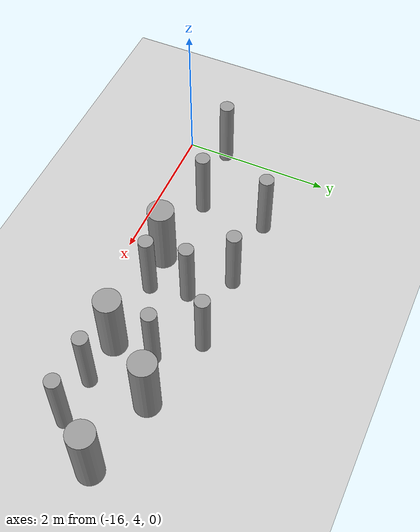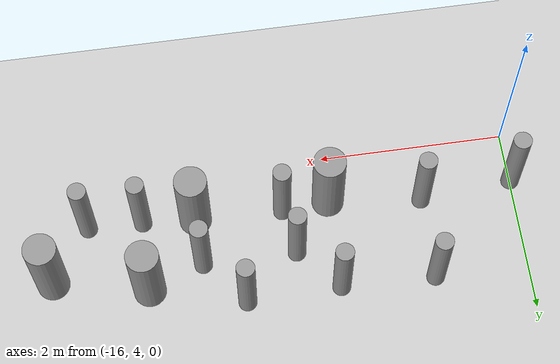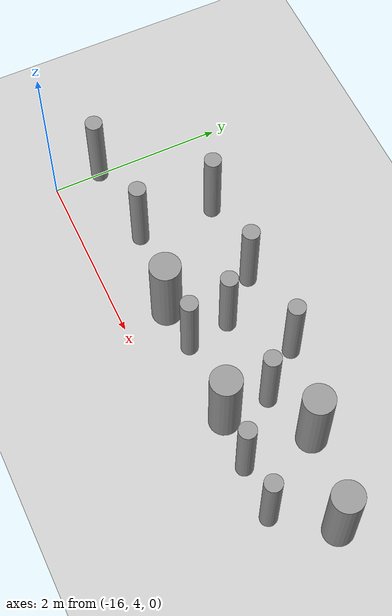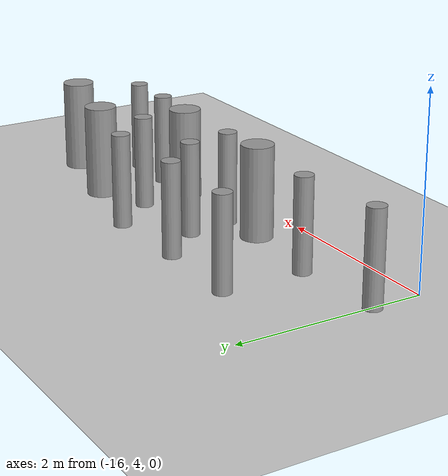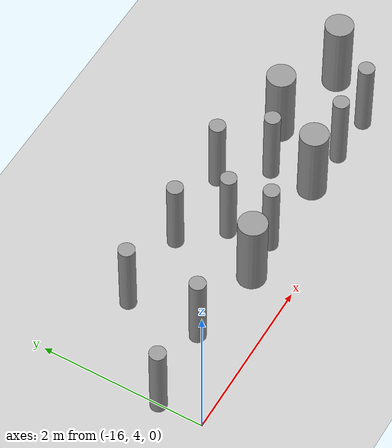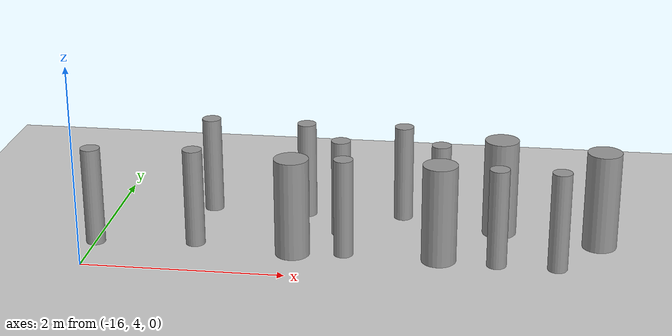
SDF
<sdf version="1.6">
 <world name="default">
  <model name="ground_plane">
   <static>1</static>
   <link name="link">
    <collision name="collision">
     <geometry><plane><normal>0 0 1</normal><size>100 100</size></plane></geometry>
     <surface><friction><ode><mu>100</mu><mu2>50</mu2></ode></friction></surface>
    </collision>
    <visual name="visual">
     <cast_shadows>0</cast_shadows>
     <geometry><plane><normal>0 0 1</normal><size>100 100</size></plane></geometry>
     <material>
      <script><uri>file://media/materials/scripts/gazebo.material</uri><name>Gazebo/Grey</name></script>
     </material>
    </visual>
   </link>
  </model>
  <model name="cyl_wall_clone_clone_3_clone_2_clone_1">
   <link name="link_0">
    <pose>-2.73893 -0.366465 0 0 -0 0</pose>
    <inertial>
     <mass>0.0374993</mass>
     <inertia>
      <ixx>0.00321281</ixx>
      <ixy>0</ixy>
      <ixz>0</ixz>
      <iyy>0.00321281</iyy>
      <iyz>0</iyz>
      <izz>0.000175774</izz>
     </inertia>
    </inertial>
    <visual name="visual">
     <geometry><cylinder><radius>0.0968661</radius><length>1</length></cylinder></geometry>
     <material>
      <lighting>1</lighting>
      <script><uri>file://media/materials/scripts/gazebo.material</uri><name>Gazebo/Grey</name></script>
      <ambient>0.3 0.3 0.3 1</ambient>
      <diffuse>0.7 0.7 0.7 1</diffuse>
      <specular>0.01 0.01 0.01 1</specular>
      <emissive>0 0 0 1</emissive>
     </material>
    </visual>
    <collision name="collision">
     <geometry><cylinder><radius>0.096866</radius><length>1</length></cylinder></geometry>
     <surface>
      <friction>
       <ode><mu>1</mu><mu2>1</mu2><fdir1>0 0 0</fdir1><slip1>0</slip1><slip2>0</slip2></ode>
       <torsional>
        <coefficient>1</coefficient>
        <patch_radius>0</patch_radius>
        <surface_radius>0</surface_radius>
        <use_patch_radius>1</use_patch_radius>
        <ode><slip>0</slip></ode>
       </torsional>
      </friction>
      <bounce><restitution_coefficient>0</restitution_coefficient><threshold>1e+06</threshold></bounce>
      <contact>
       <collide_without_contact>0</collide_without_contact>
       <collide_without_contact_bitmask>1</collide_without_contact_bitmask>
       <collide_bitmask>1</collide_bitmask>
       <ode>
        <soft_cfm>0</soft_cfm>
        <soft_erp>0.2</soft_erp>
        <kp>1e+13</kp>
        <kd>1</kd>
        <max_vel>0.01</max_vel>
        <min_depth>0</min_depth>
       </ode>
       <bullet>
        <split_impulse>1</split_impulse>
        <split_impulse_penetration_threshold>-0.01</split_impulse_penetration_threshold>
        <soft_cfm>0</soft_cfm>
        <soft_erp>0.2</soft_erp>
        <kp>1e+13</kp>
        <kd>1</kd>
       </bullet>
      </contact>
     </surface>
    </collision>
   </link>
   <link name="link_0_clone">
    <pose>-1.73893 0.61877 0 0 -0 0</pose>
    <inertial>
     <mass>0.0374993</mass>
     <inertia>
      <ixx>0.00321281</ixx>
      <ixy>0</ixy>
      <ixz>0</ixz>
      <iyy>0.00321281</iyy>
      <iyz>0</iyz>
      <izz>0.000175774</izz>
     </inertia>
    </inertial>
    <visual name="visual">
     <geometry><cylinder><radius>0.0968661</radius><length>1</length></cylinder></geometry>
     <material>
      <lighting>1</lighting>
      <script><uri>file://media/materials/scripts/gazebo.material</uri><name>Gazebo/Grey</name></script>
      <ambient>0.3 0.3 0.3 1</ambient>
      <diffuse>0.7 0.7 0.7 1</diffuse>
      <specular>0.01 0.01 0.01 1</specular>
      <emissive>0 0 0 1</emissive>
      <shader type="pixel"/>
     </material>
    </visual>
    <collision name="collision">
     <geometry><cylinder><radius>0.096866</radius><length>1</length></cylinder></geometry>
     <surface>
      <friction>
       <ode><mu>1</mu><mu2>1</mu2><fdir1>0 0 0</fdir1><slip1>0</slip1><slip2>0</slip2></ode>
       <torsional>
        <coefficient>1</coefficient>
        <patch_radius>0</patch_radius>
        <surface_radius>0</surface_radius>
        <use_patch_radius>1</use_patch_radius>
        <ode><slip>0</slip></ode>
       </torsional>
      </friction>
      <bounce><restitution_coefficient>0</restitution_coefficient><threshold>1e+06</threshold></bounce>
      <contact>
       <collide_without_contact>0</collide_without_contact>
       <collide_without_contact_bitmask>1</collide_without_contact_bitmask>
       <collide_bitmask>1</collide_bitmask>
       <ode>
        <soft_cfm>0</soft_cfm>
        <soft_erp>0.2</soft_erp>
        <kp>1e+13</kp>
        <kd>1</kd>
        <max_vel>0.01</max_vel>
        <min_depth>0</min_depth>
       </ode>
       <bullet>
        <split_impulse>1</split_impulse>
        <split_impulse_penetration_threshold>-0.01</split_impulse_penetration_threshold>
        <soft_cfm>0</soft_cfm>
        <soft_erp>0.2</soft_erp>
        <kp>1e+13</kp>
        <kd>1</kd>
       </bullet>
      </contact>
     </surface>
    </collision>
   </link>
   <link name="link_0_clone_clone">
    <pose>-0.327073 0.143919 0 0 -0 0</pose>
    <inertial>
     <mass>0.0374993</mass>
     <inertia>
      <ixx>0.00321281</ixx>
      <ixy>0</ixy>
      <ixz>0</ixz>
      <iyy>0.00321281</iyy>
      <iyz>0</iyz>
      <izz>0.000175774</izz>
     </inertia>
    </inertial>
    <visual name="visual">
     <geometry><cylinder><radius>0.0968661</radius><length>1</length></cylinder></geometry>
     <material>
      <lighting>1</lighting>
      <script><uri>file://media/materials/scripts/gazebo.material</uri><name>Gazebo/Grey</name></script>
      <ambient>0.3 0.3 0.3 1</ambient>
      <diffuse>0.7 0.7 0.7 1</diffuse>
      <specular>0.01 0.01 0.01 1</specular>
      <emissive>0 0 0 1</emissive>
      <shader type="pixel"/>
     </material>
    </visual>
    <collision name="collision">
     <geometry><cylinder><radius>0.096866</radius><length>1</length></cylinder></geometry>
     <surface>
      <friction>
       <ode><mu>1</mu><mu2>1</mu2><fdir1>0 0 0</fdir1><slip1>0</slip1><slip2>0</slip2></ode>
       <torsional>
        <coefficient>1</coefficient>
        <patch_radius>0</patch_radius>
        <surface_radius>0</surface_radius>
        <use_patch_radius>1</use_patch_radius>
        <ode><slip>0</slip></ode>
       </torsional>
      </friction>
      <bounce><restitution_coefficient>0</restitution_coefficient><threshold>1e+06</threshold></bounce>
      <contact>
       <collide_without_contact>0</collide_without_contact>
       <collide_without_contact_bitmask>1</collide_without_contact_bitmask>
       <collide_bitmask>1</collide_bitmask>
       <ode>
        <soft_cfm>0</soft_cfm>
        <soft_erp>0.2</soft_erp>
        <kp>1e+13</kp>
        <kd>1</kd>
        <max_vel>0.01</max_vel>
        <min_depth>0</min_depth>
       </ode>
       <bullet>
        <split_impulse>1</split_impulse>
        <split_impulse_penetration_threshold>-0.01</split_impulse_penetration_threshold>
        <soft_cfm>0</soft_cfm>
        <soft_erp>0.2</soft_erp>
        <kp>1e+13</kp>
        <kd>1</kd>
       </bullet>
      </contact>
     </surface>
    </collision>
   </link>
   <link name="link_0_clone_clone_0">
    <pose>1.26107 -0.419359 0 0 -0 0</pose>
    <inertial>
     <mass>0.0374993</mass>
     <inertia>
      <ixx>0.00321281</ixx>
      <ixy>0</ixy>
      <ixz>0</ixz>
      <iyy>0.00321281</iyy>
      <iyz>0</iyz>
      <izz>0.000175774</izz>
     </inertia>
    </inertial>
    <visual name="visual">
     <geometry><cylinder><radius>0.0968661</radius><length>1</length></cylinder></geometry>
     <material>
      <lighting>1</lighting>
      <script><uri>file://media/materials/scripts/gazebo.material</uri><name>Gazebo/Grey</name></script>
      <ambient>0.3 0.3 0.3 1</ambient>
      <diffuse>0.7 0.7 0.7 1</diffuse>
      <specular>0.01 0.01 0.01 1</specular>
      <emissive>0 0 0 1</emissive>
      <shader type="pixel"/>
     </material>
    </visual>
    <collision name="collision">
     <geometry><cylinder><radius>0.096866</radius><length>1</length></cylinder></geometry>
     <surface>
      <friction>
       <ode><mu>1</mu><mu2>1</mu2><fdir1>0 0 0</fdir1><slip1>0</slip1><slip2>0</slip2></ode>
       <torsional>
        <coefficient>1</coefficient>
        <patch_radius>0</patch_radius>
        <surface_radius>0</surface_radius>
        <use_patch_radius>1</use_patch_radius>
        <ode><slip>0</slip></ode>
       </torsional>
      </friction>
      <bounce><restitution_coefficient>0</restitution_coefficient><threshold>1e+06</threshold></bounce>
      <contact>
       <collide_without_contact>0</collide_without_contact>
       <collide_without_contact_bitmask>1</collide_without_contact_bitmask>
       <collide_bitmask>1</collide_bitmask>
       <ode>
        <soft_cfm>0</soft_cfm>
        <soft_erp>0.2</soft_erp>
        <kp>1e+13</kp>
        <kd>1</kd>
        <max_vel>0.01</max_vel>
        <min_depth>0</min_depth>
       </ode>
       <bullet>
        <split_impulse>1</split_impulse>
        <split_impulse_penetration_threshold>-0.01</split_impulse_penetration_threshold>
        <soft_cfm>0</soft_cfm>
        <soft_erp>0.2</soft_erp>
        <kp>1e+13</kp>
        <kd>1</kd>
       </bullet>
      </contact>
     </surface>
    </collision>
   </link>
   <link name="link_0_clone_clone_1">
    <pose>-1.73893 -0.277168 0 0 -0 0</pose>
    <inertial>
     <mass>0.0374993</mass>
     <inertia>
      <ixx>0.00321281</ixx>
      <ixy>0</ixy>
      <ixz>0</ixz>
      <iyy>0.00321281</iyy>
      <iyz>0</iyz>
      <izz>0.000175774</izz>
     </inertia>
    </inertial>
    <visual name="visual">
     <geometry><cylinder><radius>0.0968661</radius><length>1</length></cylinder></geometry>
     <material>
      <lighting>1</lighting>
      <script><uri>file://media/materials/scripts/gazebo.material</uri><name>Gazebo/Grey</name></script>
      <ambient>0.3 0.3 0.3 1</ambient>
      <diffuse>0.7 0.7 0.7 1</diffuse>
      <specular>0.01 0.01 0.01 1</specular>
      <emissive>0 0 0 1</emissive>
      <shader type="pixel"/>
     </material>
    </visual>
    <collision name="collision">
     <geometry><cylinder><radius>0.096866</radius><length>1</length></cylinder></geometry>
     <surface>
      <friction>
       <ode><mu>1</mu><mu2>1</mu2><fdir1>0 0 0</fdir1><slip1>0</slip1><slip2>0</slip2></ode>
       <torsional>
        <coefficient>1</coefficient>
        <patch_radius>0</patch_radius>
        <surface_radius>0</surface_radius>
        <use_patch_radius>1</use_patch_radius>
        <ode><slip>0</slip></ode>
       </torsional>
      </friction>
      <bounce><restitution_coefficient>0</restitution_coefficient><threshold>1e+06</threshold></bounce>
      <contact>
       <collide_without_contact>0</collide_without_contact>
       <collide_without_contact_bitmask>1</collide_without_contact_bitmask>
       <collide_bitmask>1</collide_bitmask>
       <ode>
        <soft_cfm>0</soft_cfm>
        <soft_erp>0.2</soft_erp>
        <kp>1e+13</kp>
        <kd>1</kd>
        <max_vel>0.01</max_vel>
        <min_depth>0</min_depth>
       </ode>
       <bullet>
        <split_impulse>1</split_impulse>
        <split_impulse_penetration_threshold>-0.01</split_impulse_penetration_threshold>
        <soft_cfm>0</soft_cfm>
        <soft_erp>0.2</soft_erp>
        <kp>1e+13</kp>
        <kd>1</kd>
       </bullet>
      </contact>
     </surface>
    </collision>
   </link>
   <link name="link_0_clone_clone_2">
    <pose>-0.738934 0.593961 0 0 -0 0</pose>
    <inertial>
     <mass>0.0374993</mass>
     <inertia>
      <ixx>0.00321281</ixx>
      <ixy>0</ixy>
      <ixz>0</ixz>
      <iyy>0.00321281</iyy>
      <iyz>0</iyz>
      <izz>0.000175774</izz>
     </inertia>
    </inertial>
    <visual name="visual">
     <geometry><cylinder><radius>0.0968661</radius><length>1</length></cylinder></geometry>
     <material>
      <lighting>1</lighting>
      <script><uri>file://media/materials/scripts/gazebo.material</uri><name>Gazebo/Grey</name></script>
      <ambient>0.3 0.3 0.3 1</ambient>
      <diffuse>0.7 0.7 0.7 1</diffuse>
      <specular>0.01 0.01 0.01 1</specular>
      <emissive>0 0 0 1</emissive>
      <shader type="pixel"/>
     </material>
    </visual>
    <collision name="collision">
     <geometry><cylinder><radius>0.096866</radius><length>1</length></cylinder></geometry>
     <surface>
      <friction>
       <ode><mu>1</mu><mu2>1</mu2><fdir1>0 0 0</fdir1><slip1>0</slip1><slip2>0</slip2></ode>
       <torsional>
        <coefficient>1</coefficient>
        <patch_radius>0</patch_radius>
        <surface_radius>0</surface_radius>
        <use_patch_radius>1</use_patch_radius>
        <ode><slip>0</slip></ode>
       </torsional>
      </friction>
      <bounce><restitution_coefficient>0</restitution_coefficient><threshold>1e+06</threshold></bounce>
      <contact>
       <collide_without_contact>0</collide_without_contact>
       <collide_without_contact_bitmask>1</collide_without_contact_bitmask>
       <collide_bitmask>1</collide_bitmask>
       <ode>
        <soft_cfm>0</soft_cfm>
        <soft_erp>0.2</soft_erp>
        <kp>1e+13</kp>
        <kd>1</kd>
        <max_vel>0.01</max_vel>
        <min_depth>0</min_depth>
       </ode>
       <bullet>
        <split_impulse>1</split_impulse>
        <split_impulse_penetration_threshold>-0.01</split_impulse_penetration_threshold>
        <soft_cfm>0</soft_cfm>
        <soft_erp>0.2</soft_erp>
        <kp>1e+13</kp>
        <kd>1</kd>
       </bullet>
      </contact>
     </surface>
    </collision>
   </link>
   <link name="link_0_clone_clone_3">
    <pose>0.261066 0.624849 0 0 -0 0</pose>
    <inertial>
     <mass>0.0374993</mass>
     <inertia>
      <ixx>0.00321281</ixx>
      <ixy>0</ixy>
      <ixz>0</ixz>
      <iyy>0.00321281</iyy>
      <iyz>0</iyz>
      <izz>0.000175774</izz>
     </inertia>
    </inertial>
    <visual name="visual">
     <geometry><cylinder><radius>0.0968661</radius><length>1</length></cylinder></geometry>
     <material>
      <lighting>1</lighting>
      <script><uri>file://media/materials/scripts/gazebo.material</uri><name>Gazebo/Grey</name></script>
      <ambient>0.3 0.3 0.3 1</ambient>
      <diffuse>0.7 0.7 0.7 1</diffuse>
      <specular>0.01 0.01 0.01 1</specular>
      <emissive>0 0 0 1</emissive>
      <shader type="pixel"/>
     </material>
    </visual>
    <collision name="collision">
     <geometry><cylinder><radius>0.096866</radius><length>1</length></cylinder></geometry>
     <surface>
      <friction>
       <ode><mu>1</mu><mu2>1</mu2><fdir1>0 0 0</fdir1><slip1>0</slip1><slip2>0</slip2></ode>
       <torsional>
        <coefficient>1</coefficient>
        <patch_radius>0</patch_radius>
        <surface_radius>0</surface_radius>
        <use_patch_radius>1</use_patch_radius>
        <ode><slip>0</slip></ode>
       </torsional>
      </friction>
      <bounce><restitution_coefficient>0</restitution_coefficient><threshold>1e+06</threshold></bounce>
      <contact>
       <collide_without_contact>0</collide_without_contact>
       <collide_without_contact_bitmask>1</collide_without_contact_bitmask>
       <collide_bitmask>1</collide_bitmask>
       <ode>
        <soft_cfm>0</soft_cfm>
        <soft_erp>0.2</soft_erp>
        <kp>1e+13</kp>
        <kd>1</kd>
        <max_vel>0.01</max_vel>
        <min_depth>0</min_depth>
       </ode>
       <bullet>
        <split_impulse>1</split_impulse>
        <split_impulse_penetration_threshold>-0.01</split_impulse_penetration_threshold>
        <soft_cfm>0</soft_cfm>
        <soft_erp>0.2</soft_erp>
        <kp>1e+13</kp>
        <kd>1</kd>
       </bullet>
      </contact>
     </surface>
    </collision>
   </link>
   <link name="link_0_clone_clone_4">
    <pose>-0.239049 -0.353105 0 0 -0 0</pose>
    <inertial>
     <mass>0.0374993</mass>
     <inertia>
      <ixx>0.00321281</ixx>
      <ixy>0</ixy>
      <ixz>0</ixz>
      <iyy>0.00321281</iyy>
      <iyz>0</iyz>
      <izz>0.000175774</izz>
     </inertia>
    </inertial>
    <visual name="visual">
     <geometry><cylinder><radius>0.0968661</radius><length>1</length></cylinder></geometry>
     <material>
      <lighting>1</lighting>
      <script><uri>file://media/materials/scripts/gazebo.material</uri><name>Gazebo/Grey</name></script>
      <ambient>0.3 0.3 0.3 1</ambient>
      <diffuse>0.7 0.7 0.7 1</diffuse>
      <specular>0.01 0.01 0.01 1</specular>
      <emissive>0 0 0 1</emissive>
      <shader type="pixel"/>
     </material>
    </visual>
    <collision name="collision">
     <geometry><cylinder><radius>0.096866</radius><length>1</length></cylinder></geometry>
     <surface>
      <friction>
       <ode><mu>1</mu><mu2>1</mu2><fdir1>0 0 0</fdir1><slip1>0</slip1><slip2>0</slip2></ode>
       <torsional>
        <coefficient>1</coefficient>
        <patch_radius>0</patch_radius>
        <surface_radius>0</surface_radius>
        <use_patch_radius>1</use_patch_radius>
        <ode><slip>0</slip></ode>
       </torsional>
      </friction>
      <bounce><restitution_coefficient>0</restitution_coefficient><threshold>1e+06</threshold></bounce>
      <contact>
       <collide_without_contact>0</collide_without_contact>
       <collide_without_contact_bitmask>1</collide_without_contact_bitmask>
       <collide_bitmask>1</collide_bitmask>
       <ode>
        <soft_cfm>0</soft_cfm>
        <soft_erp>0.2</soft_erp>
        <kp>1e+13</kp>
        <kd>1</kd>
        <max_vel>0.01</max_vel>
        <min_depth>0</min_depth>
       </ode>
       <bullet>
        <split_impulse>1</split_impulse>
        <split_impulse_penetration_threshold>-0.01</split_impulse_penetration_threshold>
        <soft_cfm>0</soft_cfm>
        <soft_erp>0.2</soft_erp>
        <kp>1e+13</kp>
        <kd>1</kd>
       </bullet>
      </contact>
     </surface>
    </collision>
   </link>
   <link name="link_0_clone_clone_5">
    <pose>0.672792 0.143919 0 0 -0 0</pose>
    <inertial>
     <mass>0.0374993</mass>
     <inertia>
      <ixx>0.00321281</ixx>
      <ixy>0</ixy>
      <ixz>0</ixz>
      <iyy>0.00321281</iyy>
      <iyz>0</iyz>
      <izz>0.000175774</izz>
     </inertia>
    </inertial>
    <visual name="visual">
     <geometry><cylinder><radius>0.0968661</radius><length>1</length></cylinder></geometry>
     <material>
      <lighting>1</lighting>
      <script><uri>file://media/materials/scripts/gazebo.material</uri><name>Gazebo/Grey</name></script>
      <ambient>0.3 0.3 0.3 1</ambient>
      <diffuse>0.7 0.7 0.7 1</diffuse>
      <specular>0.01 0.01 0.01 1</specular>
      <emissive>0 0 0 1</emissive>
      <shader type="pixel"/>
     </material>
    </visual>
    <collision name="collision">
     <geometry><cylinder><radius>0.096866</radius><length>1</length></cylinder></geometry>
     <surface>
      <friction>
       <ode><mu>1</mu><mu2>1</mu2><fdir1>0 0 0</fdir1><slip1>0</slip1><slip2>0</slip2></ode>
       <torsional>
        <coefficient>1</coefficient>
        <patch_radius>0</patch_radius>
        <surface_radius>0</surface_radius>
        <use_patch_radius>1</use_patch_radius>
        <ode><slip>0</slip></ode>
       </torsional>
      </friction>
      <bounce><restitution_coefficient>0</restitution_coefficient><threshold>1e+06</threshold></bounce>
      <contact>
       <collide_without_contact>0</collide_without_contact>
       <collide_without_contact_bitmask>1</collide_without_contact_bitmask>
       <collide_bitmask>1</collide_bitmask>
       <ode>
        <soft_cfm>0</soft_cfm>
        <soft_erp>0.2</soft_erp>
        <kp>1e+13</kp>
        <kd>1</kd>
        <max_vel>0.01</max_vel>
        <min_depth>0</min_depth>
       </ode>
       <bullet>
        <split_impulse>1</split_impulse>
        <split_impulse_penetration_threshold>-0.01</split_impulse_penetration_threshold>
        <soft_cfm>0</soft_cfm>
        <soft_erp>0.2</soft_erp>
        <kp>1e+13</kp>
        <kd>1</kd>
       </bullet>
      </contact>
     </surface>
    </collision>
   </link>
   <link name="link_0_clone_clone_6">
    <pose>1.84596 -0.433423 0 0 -0 0</pose>
    <inertial>
     <mass>0.0374993</mass>
     <inertia>
      <ixx>0.00321281</ixx>
      <ixy>0</ixy>
      <ixz>0</ixz>
      <iyy>0.00321281</iyy>
      <iyz>0</iyz>
      <izz>0.000175774</izz>
     </inertia>
    </inertial>
    <visual name="visual">
     <geometry><cylinder><radius>0.0968661</radius><length>1</length></cylinder></geometry>
     <material>
      <lighting>1</lighting>
      <script><uri>file://media/materials/scripts/gazebo.material</uri><name>Gazebo/Grey</name></script>
      <ambient>0.3 0.3 0.3 1</ambient>
      <diffuse>0.7 0.7 0.7 1</diffuse>
      <specular>0.01 0.01 0.01 1</specular>
      <emissive>0 0 0 1</emissive>
      <shader type="pixel"/>
     </material>
    </visual>
    <collision name="collision">
     <geometry><cylinder><radius>0.096866</radius><length>1</length></cylinder></geometry>
     <surface>
      <friction>
       <ode><mu>1</mu><mu2>1</mu2><fdir1>0 0 0</fdir1><slip1>0</slip1><slip2>0</slip2></ode>
       <torsional>
        <coefficient>1</coefficient>
        <patch_radius>0</patch_radius>
        <surface_radius>0</surface_radius>
        <use_patch_radius>1</use_patch_radius>
        <ode><slip>0</slip></ode>
       </torsional>
      </friction>
      <bounce><restitution_coefficient>0</restitution_coefficient><threshold>1e+06</threshold></bounce>
      <contact>
       <collide_without_contact>0</collide_without_contact>
       <collide_without_contact_bitmask>1</collide_without_contact_bitmask>
       <collide_bitmask>1</collide_bitmask>
       <ode>
        <soft_cfm>0</soft_cfm>
        <soft_erp>0.2</soft_erp>
        <kp>1e+13</kp>
        <kd>1</kd>
        <max_vel>0.01</max_vel>
        <min_depth>0</min_depth>
       </ode>
       <bullet>
        <split_impulse>1</split_impulse>
        <split_impulse_penetration_threshold>-0.01</split_impulse_penetration_threshold>
        <soft_cfm>0</soft_cfm>
        <soft_erp>0.2</soft_erp>
        <kp>1e+13</kp>
        <kd>1</kd>
       </bullet>
      </contact>
     </surface>
    </collision>
   </link>
   <link name="link_1">
    <pose>-0.738934 -0.397931 0 0 -0 0</pose>
    <inertial>
     <mass>0.117398</mass>
     <inertia>
      <ixx>0.0106445</ixx>
      <ixy>0</ixy>
      <ixz>0</ixz>
      <iyy>0.0106445</iyy>
      <iyz>0</iyz>
      <izz>0.00172278</izz>
     </inertia>
    </inertial>
    <visual name="visual">
     <geometry><cylinder><radius>0.171317</radius><length>1</length></cylinder></geometry>
     <material>
      <lighting>1</lighting>
      <script><uri>file://media/materials/scripts/gazebo.material</uri><name>Gazebo/Grey</name></script>
      <ambient>0.3 0.3 0.3 1</ambient>
      <diffuse>0.7 0.7 0.7 1</diffuse>
      <specular>0.01 0.01 0.01 1</specular>
      <emissive>0 0 0 1</emissive>
     </material>
    </visual>
    <collision name="collision">
     <geometry><cylinder><radius>0.171317</radius><length>1</length></cylinder></geometry>
     <surface>
      <friction>
       <ode><mu>1</mu><mu2>1</mu2><fdir1>0 0 0</fdir1><slip1>0</slip1><slip2>0</slip2></ode>
       <torsional>
        <coefficient>1</coefficient>
        <patch_radius>0</patch_radius>
        <surface_radius>0</surface_radius>
        <use_patch_radius>1</use_patch_radius>
        <ode><slip>0</slip></ode>
       </torsional>
      </friction>
      <bounce><restitution_coefficient>0</restitution_coefficient><threshold>1e+06</threshold></bounce>
      <contact>
       <collide_without_contact>0</collide_without_contact>
       <collide_without_contact_bitmask>1</collide_without_contact_bitmask>
       <collide_bitmask>1</collide_bitmask>
       <ode>
        <soft_cfm>0</soft_cfm>
        <soft_erp>0.2</soft_erp>
        <kp>1e+13</kp>
        <kd>1</kd>
        <max_vel>0.01</max_vel>
        <min_depth>0</min_depth>
       </ode>
       <bullet>
        <split_impulse>1</split_impulse>
        <split_impulse_penetration_threshold>-0.01</split_impulse_penetration_threshold>
        <soft_cfm>0</soft_cfm>
        <soft_erp>0.2</soft_erp>
        <kp>1e+13</kp>
        <kd>1</kd>
       </bullet>
      </contact>
     </surface>
    </collision>
   </link>
   <link name="link_1_clone">
    <pose>0.697784 -0.380861 0 0 -0 0</pose>
    <inertial>
     <mass>0.117398</mass>
     <inertia>
      <ixx>0.0106445</ixx>
      <ixy>0</ixy>
      <ixz>0</ixz>
      <iyy>0.0106445</iyy>
      <iyz>0</iyz>
      <izz>0.00172278</izz>
     </inertia>
    </inertial>
    <visual name="visual">
     <geometry><cylinder><radius>0.171317</radius><length>1</length></cylinder></geometry>
     <material>
      <lighting>1</lighting>
      <script><uri>file://media/materials/scripts/gazebo.material</uri><name>Gazebo/Grey</name></script>
      <ambient>0.3 0.3 0.3 1</ambient>
      <diffuse>0.7 0.7 0.7 1</diffuse>
      <specular>0.01 0.01 0.01 1</specular>
      <emissive>0 0 0 1</emissive>
      <shader type="pixel"/>
     </material>
    </visual>
    <collision name="collision">
     <geometry><cylinder><radius>0.171317</radius><length>1</length></cylinder></geometry>
     <surface>
      <friction>
       <ode><mu>1</mu><mu2>1</mu2><fdir1>0 0 0</fdir1><slip1>0</slip1><slip2>0</slip2></ode>
       <torsional>
        <coefficient>1</coefficient>
        <patch_radius>0</patch_radius>
        <surface_radius>0</surface_radius>
        <use_patch_radius>1</use_patch_radius>
        <ode><slip>0</slip></ode>
       </torsional>
      </friction>
      <bounce><restitution_coefficient>0</restitution_coefficient><threshold>1e+06</threshold></bounce>
      <contact>
       <collide_without_contact>0</collide_without_contact>
       <collide_without_contact_bitmask>1</collide_without_contact_bitmask>
       <collide_bitmask>1</collide_bitmask>
       <ode>
        <soft_cfm>0</soft_cfm>
        <soft_erp>0.2</soft_erp>
        <kp>1e+13</kp>
        <kd>1</kd>
        <max_vel>0.01</max_vel>
        <min_depth>0</min_depth>
       </ode>
       <bullet>
        <split_impulse>1</split_impulse>
        <split_impulse_penetration_threshold>-0.01</split_impulse_penetration_threshold>
        <soft_cfm>0</soft_cfm>
        <soft_erp>0.2</soft_erp>
        <kp>1e+13</kp>
        <kd>1</kd>
       </bullet>
      </contact>
     </surface>
    </collision>
   </link>
   <link name="link_1_clone_0">
    <pose>1.26107 0.358974 0 0 -0 0</pose>
    <inertial>
     <mass>0.117398</mass>
     <inertia>
      <ixx>0.0106445</ixx>
      <ixy>0</ixy>
      <ixz>0</ixz>
      <iyy>0.0106445</iyy>
      <iyz>0</iyz>
      <izz>0.00172278</izz>
     </inertia>
    </inertial>
    <visual name="visual">
     <geometry><cylinder><radius>0.171317</radius><length>1</length></cylinder></geometry>
     <material>
      <lighting>1</lighting>
      <script><uri>file://media/materials/scripts/gazebo.material</uri><name>Gazebo/Grey</name></script>
      <ambient>0.3 0.3 0.3 1</ambient>
      <diffuse>0.7 0.7 0.7 1</diffuse>
      <specular>0.01 0.01 0.01 1</specular>
      <emissive>0 0 0 1</emissive>
      <shader type="pixel"/>
     </material>
    </visual>
    <collision name="collision">
     <geometry><cylinder><radius>0.171317</radius><length>1</length></cylinder></geometry>
     <surface>
      <friction>
       <ode><mu>1</mu><mu2>1</mu2><fdir1>0 0 0</fdir1><slip1>0</slip1><slip2>0</slip2></ode>
       <torsional>
        <coefficient>1</coefficient>
        <patch_radius>0</patch_radius>
        <surface_radius>0</surface_radius>
        <use_patch_radius>1</use_patch_radius>
        <ode><slip>0</slip></ode>
       </torsional>
      </friction>
      <bounce><restitution_coefficient>0</restitution_coefficient><threshold>1e+06</threshold></bounce>
      <contact>
       <collide_without_contact>0</collide_without_contact>
       <collide_without_contact_bitmask>1</collide_without_contact_bitmask>
       <collide_bitmask>1</collide_bitmask>
       <ode>
        <soft_cfm>0</soft_cfm>
        <soft_erp>0.2</soft_erp>
        <kp>1e+13</kp>
        <kd>1</kd>
        <max_vel>0.01</max_vel>
        <min_depth>0</min_depth>
       </ode>
       <bullet>
        <split_impulse>1</split_impulse>
        <split_impulse_penetration_threshold>-0.01</split_impulse_penetration_threshold>
        <soft_cfm>0</soft_cfm>
        <soft_erp>0.2</soft_erp>
        <kp>1e+13</kp>
        <kd>1</kd>
       </bullet>
      </contact>
     </surface>
    </collision>
   </link>
   <link name="link_1_clone_1">
    <pose>2.26107 0.143919 0 0 -0 0</pose>
    <inertial>
     <mass>0.117398</mass>
     <inertia>
      <ixx>0.0106445</ixx>
      <ixy>0</ixy>
      <ixz>0</ixz>
      <iyy>0.0106445</iyy>
      <iyz>0</iyz>
      <izz>0.00172278</izz>
     </inertia>
    </inertial>
    <visual name="visual">
     <geometry><cylinder><radius>0.171317</radius><length>1</length></cylinder></geometry>
     <material>
      <lighting>1</lighting>
      <script><uri>file://media/materials/scripts/gazebo.material</uri><name>Gazebo/Grey</name></script>
      <ambient>0.3 0.3 0.3 1</ambient>
      <diffuse>0.7 0.7 0.7 1</diffuse>
      <specular>0.01 0.01 0.01 1</specular>
      <emissive>0 0 0 1</emissive>
      <shader type="pixel"/>
     </material>
    </visual>
    <collision name="collision">
     <geometry><cylinder><radius>0.171317</radius><length>1</length></cylinder></geometry>
     <surface>
      <friction>
       <ode><mu>1</mu><mu2>1</mu2><fdir1>0 0 0</fdir1><slip1>0</slip1><slip2>0</slip2></ode>
       <torsional>
        <coefficient>1</coefficient>
        <patch_radius>0</patch_radius>
        <surface_radius>0</surface_radius>
        <use_patch_radius>1</use_patch_radius>
        <ode><slip>0</slip></ode>
       </torsional>
      </friction>
      <bounce><restitution_coefficient>0</restitution_coefficient><threshold>1e+06</threshold></bounce>
      <contact>
       <collide_without_contact>0</collide_without_contact>
       <collide_without_contact_bitmask>1</collide_without_contact_bitmask>
       <collide_bitmask>1</collide_bitmask>
       <ode>
        <soft_cfm>0</soft_cfm>
        <soft_erp>0.2</soft_erp>
        <kp>1e+13</kp>
        <kd>1</kd>
        <max_vel>0.01</max_vel>
        <min_depth>0</min_depth>
       </ode>
       <bullet>
        <split_impulse>1</split_impulse>
        <split_impulse_penetration_threshold>-0.01</split_impulse_penetration_threshold>
        <soft_cfm>0</soft_cfm>
        <soft_erp>0.2</soft_erp>
        <kp>1e+13</kp>
        <kd>1</kd>
       </bullet>
      </contact>
     </surface>
    </collision>
   </link>
   <static>1</static>
   <pose>-13.2635 4.90793 0.5 0 -0 0</pose>
  </model>
 </world>
</sdf>
